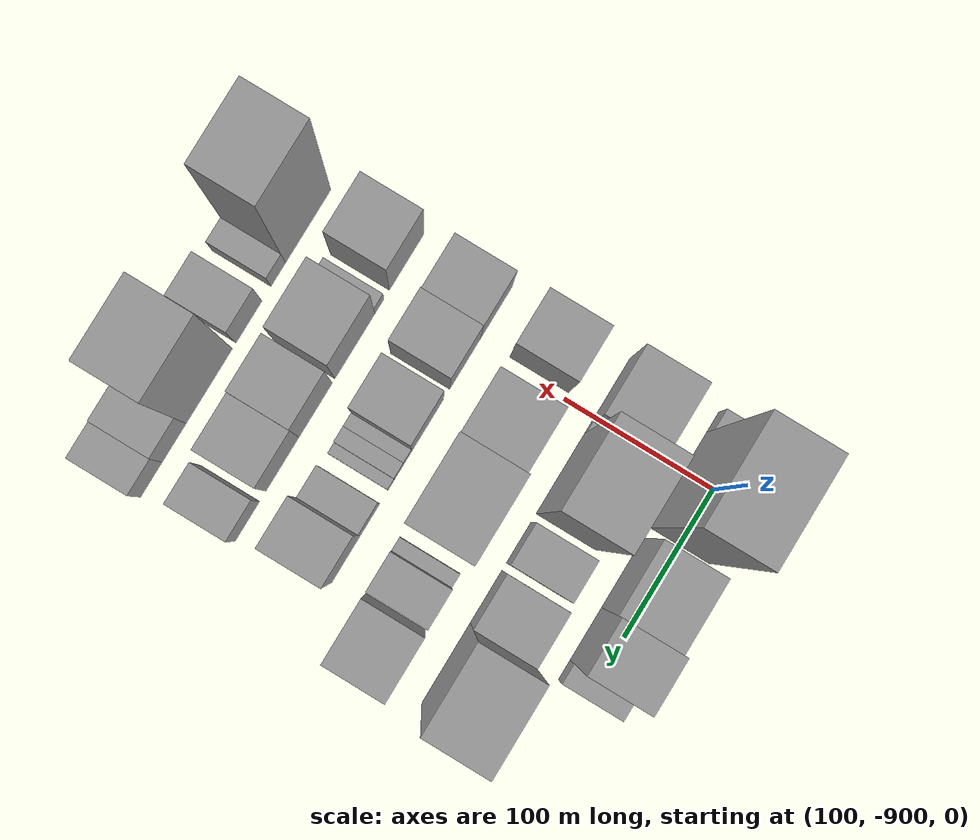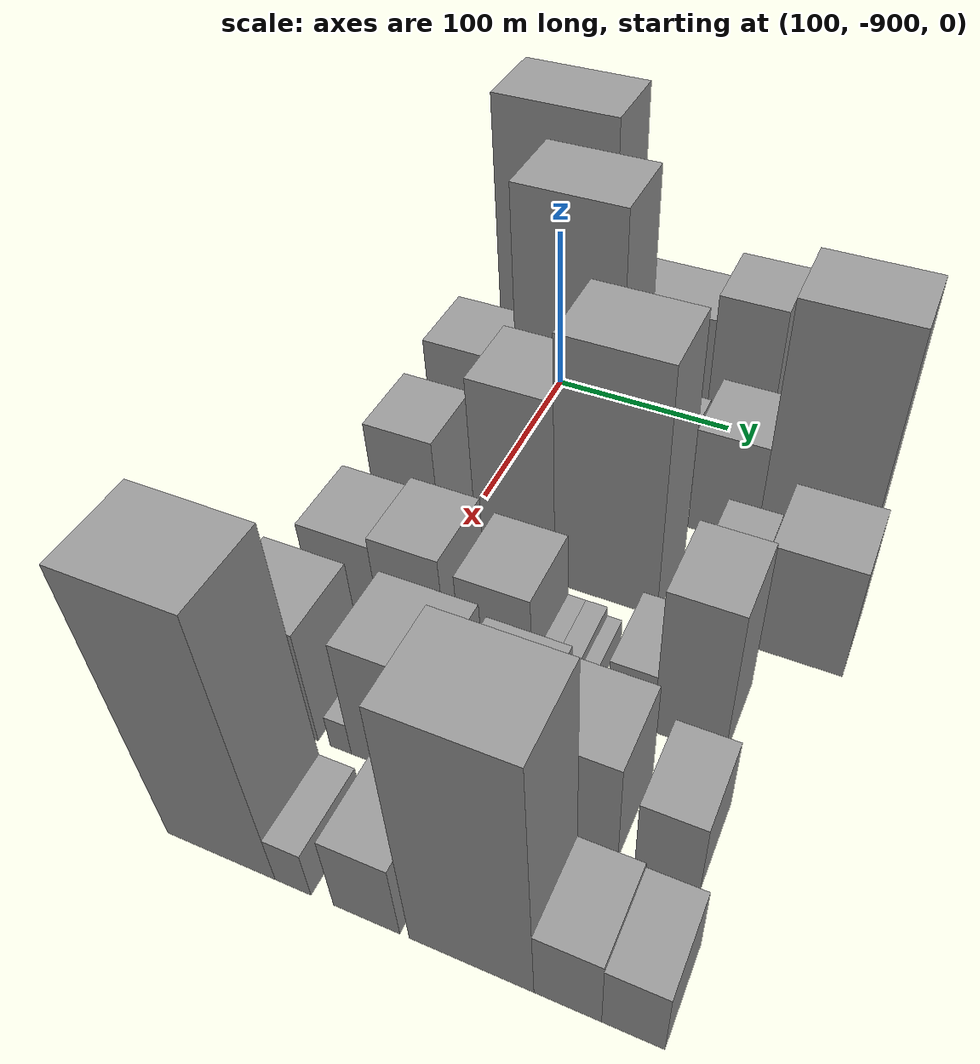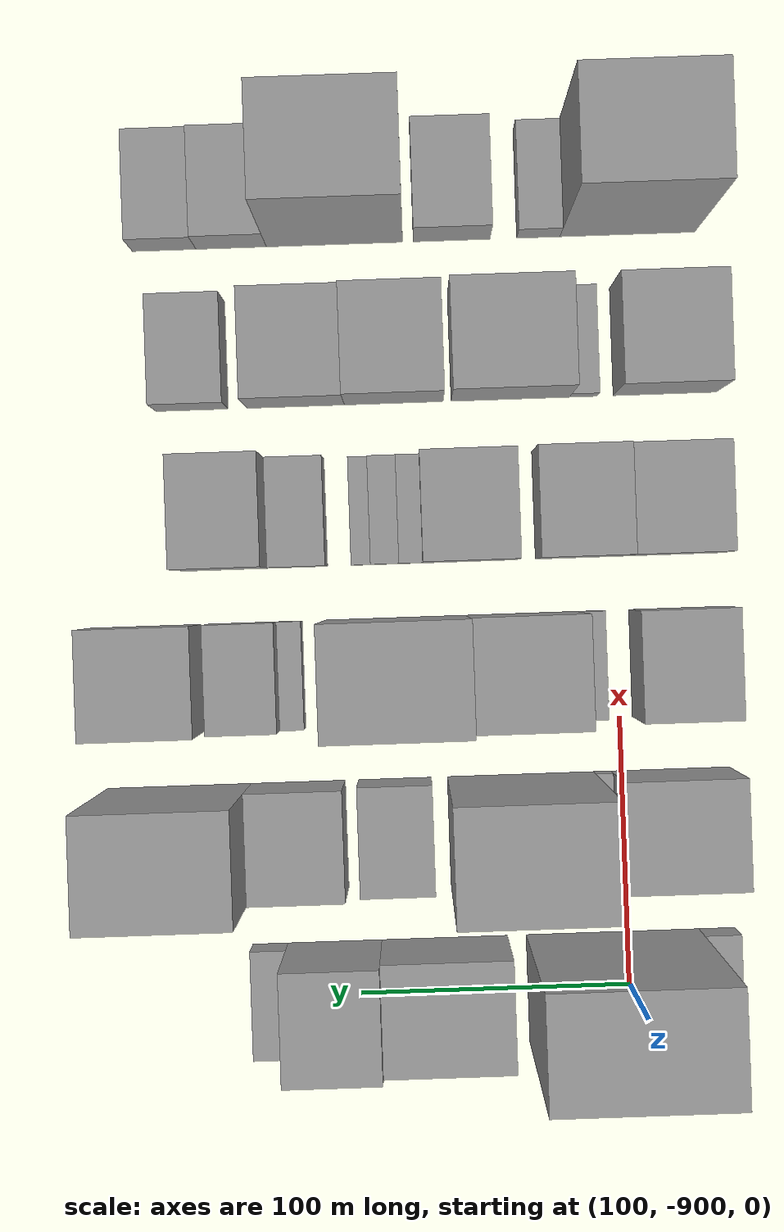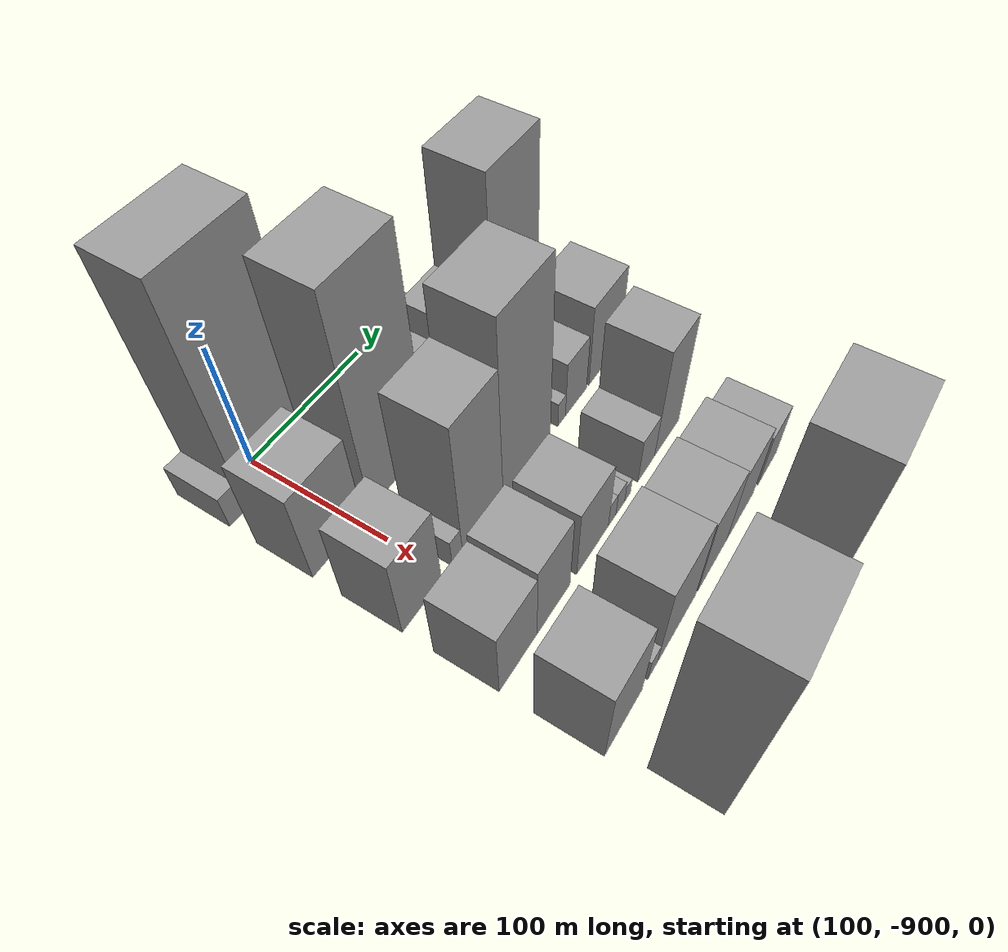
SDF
<sdf version="1.6">
 <world name="default">
  <model name="building_1">
   <static>1</static>
   <pose>100.0000 -933.2651 0 0.000000 0.000000 0.000000</pose>
   <link name="link">
    <pose>0 0 13.50 0 0 0</pose>
    <collision name="collision"><geometry><box><size>40.0000 13.4698 27.0000</size></box></geometry></collision>
    <visual name="visual">
     <cast_shadows>0</cast_shadows>
     <geometry><box><size>40.0000 13.4698 27.0000</size></box></geometry>
     <material>
      <script>
       <uri>model://grey_wall/materials/scripts</uri>
       <uri>model://grey_wall/materials/textures</uri>
       <name>vrc/grey_wall</name>
      </script>
     </material>
    </visual>
   </link>
  </model>
  <model name="building_2">
   <static>1</static>
   <pose>100.0000 -894.2700 0 0.000000 0.000000 0.000000</pose>
   <link name="link">
    <pose>0 0 90.00 0 0 0</pose>
    <collision name="collision"><geometry><box><size>40.0000 64.5203 180.0000</size></box></geometry></collision>
    <visual name="visual">
     <cast_shadows>0</cast_shadows>
     <geometry><box><size>40.0000 64.5203 180.0000</size></box></geometry>
     <material>
      <script>
       <uri>model://grey_wall/materials/scripts</uri>
       <uri>model://grey_wall/materials/textures</uri>
       <name>vrc/grey_wall</name>
      </script>
     </material>
    </visual>
   </link>
  </model>
  <model name="building_3">
   <static>1</static>
   <pose>100.0000 -831.5772 0 0.000000 0.000000 0.000000</pose>
   <link name="link">
    <pose>0 0 42.00 0 0 0</pose>
    <collision name="collision"><geometry><box><size>40.0000 46.8655 84.0000</size></box></geometry></collision>
    <visual name="visual">
     <cast_shadows>0</cast_shadows>
     <geometry><box><size>40.0000 46.8655 84.0000</size></box></geometry>
     <material>
      <script>
       <uri>model://grey_wall/materials/scripts</uri>
       <uri>model://grey_wall/materials/textures</uri>
       <name>vrc/grey_wall</name>
      </script>
     </material>
    </visual>
   </link>
  </model>
  <model name="building_4">
   <static>1</static>
   <pose>100.0000 -790.6381 0 0.000000 0.000000 0.000000</pose>
   <link name="link">
    <pose>0 0 49.50 0 0 0</pose>
    <collision name="collision"><geometry><box><size>40.0000 35.0127 99.0000</size></box></geometry></collision>
    <visual name="visual">
     <cast_shadows>0</cast_shadows>
     <geometry><box><size>40.0000 35.0127 99.0000</size></box></geometry>
     <material>
      <script>
       <uri>model://grey_wall/materials/scripts</uri>
       <uri>model://grey_wall/materials/textures</uri>
       <name>vrc/grey_wall</name>
      </script>
     </material>
    </visual>
   </link>
  </model>
  <model name="building_5">
   <static>1</static>
   <pose>100.0000 -766.5881 0 0.000000 0.000000 0.000000</pose>
   <link name="link">
    <pose>0 0 13.50 0 0 0</pose>
    <collision name="collision"><geometry><box><size>40.0000 13.0871 27.0000</size></box></geometry></collision>
    <visual name="visual">
     <cast_shadows>0</cast_shadows>
     <geometry><box><size>40.0000 13.0871 27.0000</size></box></geometry>
     <material>
      <script>
       <uri>model://grey_wall/materials/scripts</uri>
       <uri>model://grey_wall/materials/textures</uri>
       <name>vrc/grey_wall</name>
      </script>
     </material>
    </visual>
   </link>
  </model>
  <model name="building_46">
   <static>1</static>
   <pose>160.0000 -917.8969 0 0.000000 0.000000 0.000000</pose>
   <link name="link">
    <pose>0 0 37.50 0 0 0</pose>
    <collision name="collision"><geometry><box><size>40.0000 44.2061 75.0000</size></box></geometry></collision>
    <visual name="visual">
     <cast_shadows>0</cast_shadows>
     <geometry><box><size>40.0000 44.2061 75.0000</size></box></geometry>
     <material>
      <script>
       <uri>model://grey_wall/materials/scripts</uri>
       <uri>model://grey_wall/materials/textures</uri>
       <name>vrc/grey_wall</name>
      </script>
     </material>
    </visual>
   </link>
  </model>
  <model name="building_47">
   <static>1</static>
   <pose>160.0000 -892.5548 0 0.000000 0.000000 0.000000</pose>
   <link name="link">
    <pose>0 0 7.50 0 0 0</pose>
    <collision name="collision"><geometry><box><size>40.0000 6.4782 15.0000</size></box></geometry></collision>
    <visual name="visual">
     <cast_shadows>0</cast_shadows>
     <geometry><box><size>40.0000 6.4782 15.0000</size></box></geometry>
     <material>
      <script>
       <uri>model://grey_wall/materials/scripts</uri>
       <uri>model://grey_wall/materials/textures</uri>
       <name>vrc/grey_wall</name>
      </script>
     </material>
    </visual>
   </link>
  </model>
  <model name="building_48">
   <static>1</static>
   <pose>160.0000 -861.9992 0 0.000000 0.000000 0.000000</pose>
   <link name="link">
    <pose>0 0 87.00 0 0 0</pose>
    <collision name="collision"><geometry><box><size>40.0000 54.6330 174.0000</size></box></geometry></collision>
    <visual name="visual">
     <cast_shadows>0</cast_shadows>
     <geometry><box><size>40.0000 54.6330 174.0000</size></box></geometry>
     <material>
      <script>
       <uri>model://grey_wall/materials/scripts</uri>
       <uri>model://grey_wall/materials/textures</uri>
       <name>vrc/grey_wall</name>
      </script>
     </material>
    </visual>
   </link>
  </model>
  <model name="building_49">
   <static>1</static>
   <pose>160.0000 -815.1292 0 0.000000 0.000000 0.000000</pose>
   <link name="link">
    <pose>0 0 25.50 0 0 0</pose>
    <collision name="collision"><geometry><box><size>40.0000 27.1071 51.0000</size></box></geometry></collision>
    <visual name="visual">
     <cast_shadows>0</cast_shadows>
     <geometry><box><size>40.0000 27.1071 51.0000</size></box></geometry>
     <material>
      <script>
       <uri>model://grey_wall/materials/scripts</uri>
       <uri>model://grey_wall/materials/textures</uri>
       <name>vrc/grey_wall</name>
      </script>
     </material>
    </visual>
   </link>
  </model>
  <model name="building_50">
   <static>1</static>
   <pose>160.0000 -779.0476 0 0.000000 0.000000 0.000000</pose>
   <link name="link">
    <pose>0 0 33.00 0 0 0</pose>
    <collision name="collision"><geometry><box><size>40.0000 35.0561 66.0000</size></box></geometry></collision>
    <visual name="visual">
     <cast_shadows>0</cast_shadows>
     <geometry><box><size>40.0000 35.0561 66.0000</size></box></geometry>
     <material>
      <script>
       <uri>model://grey_wall/materials/scripts</uri>
       <uri>model://grey_wall/materials/textures</uri>
       <name>vrc/grey_wall</name>
      </script>
     </material>
    </visual>
   </link>
  </model>
  <model name="building_51">
   <static>1</static>
   <pose>160.0000 -734.7653 0 0.000000 0.000000 0.000000</pose>
   <link name="link">
    <pose>0 0 75.00 0 0 0</pose>
    <collision name="collision"><geometry><box><size>40.0000 53.5085 150.0000</size></box></geometry></collision>
    <visual name="visual">
     <cast_shadows>0</cast_shadows>
     <geometry><box><size>40.0000 53.5085 150.0000</size></box></geometry>
     <material>
      <script>
       <uri>model://grey_wall/materials/scripts</uri>
       <uri>model://grey_wall/materials/textures</uri>
       <name>vrc/grey_wall</name>
      </script>
     </material>
    </visual>
   </link>
  </model>
  <model name="building_93">
   <static>1</static>
   <pose>220.0000 -922.2115 0 0.000000 0.000000 0.000000</pose>
   <link name="link">
    <pose>0 0 34.50 0 0 0</pose>
    <collision name="collision"><geometry><box><size>40.0000 35.5771 69.0000</size></box></geometry></collision>
    <visual name="visual">
     <cast_shadows>0</cast_shadows>
     <geometry><box><size>40.0000 35.5771 69.0000</size></box></geometry>
     <material>
      <script>
       <uri>model://grey_wall/materials/scripts</uri>
       <uri>model://grey_wall/materials/textures</uri>
       <name>vrc/grey_wall</name>
      </script>
     </material>
    </visual>
   </link>
  </model>
  <model name="building_94">
   <static>1</static>
   <pose>220.0000 -889.5481 0 0.000000 0.000000 0.000000</pose>
   <link name="link">
    <pose>0 0 12.00 0 0 0</pose>
    <collision name="collision"><geometry><box><size>40.0000 9.7497 24.0000</size></box></geometry></collision>
    <visual name="visual">
     <cast_shadows>0</cast_shadows>
     <geometry><box><size>40.0000 9.7497 24.0000</size></box></geometry>
     <material>
      <script>
       <uri>model://grey_wall/materials/scripts</uri>
       <uri>model://grey_wall/materials/textures</uri>
       <name>vrc/grey_wall</name>
      </script>
     </material>
    </visual>
   </link>
  </model>
  <model name="building_95">
   <static>1</static>
   <pose>220.0000 -864.0778 0 0.000000 0.000000 0.000000</pose>
   <link name="link">
    <pose>0 0 57.00 0 0 0</pose>
    <collision name="collision"><geometry><box><size>40.0000 41.1908 114.0000</size></box></geometry></collision>
    <visual name="visual">
     <cast_shadows>0</cast_shadows>
     <geometry><box><size>40.0000 41.1908 114.0000</size></box></geometry>
     <material>
      <script>
       <uri>model://grey_wall/materials/scripts</uri>
       <uri>model://grey_wall/materials/textures</uri>
       <name>vrc/grey_wall</name>
      </script>
     </material>
    </visual>
   </link>
  </model>
  <model name="building_96">
   <static>1</static>
   <pose>220.0000 -817.5192 0 0.000000 0.000000 0.000000</pose>
   <link name="link">
    <pose>0 0 75.00 0 0 0</pose>
    <collision name="collision"><geometry><box><size>40.0000 51.9264 150.0000</size></box></geometry></collision>
    <visual name="visual">
     <cast_shadows>0</cast_shadows>
     <geometry><box><size>40.0000 51.9264 150.0000</size></box></geometry>
     <material>
      <script>
       <uri>model://grey_wall/materials/scripts</uri>
       <uri>model://grey_wall/materials/textures</uri>
       <name>vrc/grey_wall</name>
      </script>
     </material>
    </visual>
   </link>
  </model>
  <model name="building_97">
   <static>1</static>
   <pose>220.0000 -778.0664 0 0.000000 0.000000 0.000000</pose>
   <link name="link">
    <pose>0 0 10.50 0 0 0</pose>
    <collision name="collision"><geometry><box><size>40.0000 8.9793 21.0000</size></box></geometry></collision>
    <visual name="visual">
     <cast_shadows>0</cast_shadows>
     <geometry><box><size>40.0000 8.9793 21.0000</size></box></geometry>
     <material>
      <script>
       <uri>model://grey_wall/materials/scripts</uri>
       <uri>model://grey_wall/materials/textures</uri>
       <name>vrc/grey_wall</name>
      </script>
     </material>
    </visual>
   </link>
  </model>
  <model name="building_98">
   <static>1</static>
   <pose>220.0000 -760.6428 0 0.000000 0.000000 0.000000</pose>
   <link name="link">
    <pose>0 0 24.00 0 0 0</pose>
    <collision name="collision"><geometry><box><size>40.0000 25.8678 48.0000</size></box></geometry></collision>
    <visual name="visual">
     <cast_shadows>0</cast_shadows>
     <geometry><box><size>40.0000 25.8678 48.0000</size></box></geometry>
     <material>
      <script>
       <uri>model://grey_wall/materials/scripts</uri>
       <uri>model://grey_wall/materials/textures</uri>
       <name>vrc/grey_wall</name>
      </script>
     </material>
    </visual>
   </link>
  </model>
  <model name="building_99">
   <static>1</static>
   <pose>220.0000 -724.1850 0 0.000000 0.000000 0.000000</pose>
   <link name="link">
    <pose>0 0 34.50 0 0 0</pose>
    <collision name="collision"><geometry><box><size>40.0000 41.0480 69.0000</size></box></geometry></collision>
    <visual name="visual">
     <cast_shadows>0</cast_shadows>
     <geometry><box><size>40.0000 41.0480 69.0000</size></box></geometry>
     <material>
      <script>
       <uri>model://grey_wall/materials/scripts</uri>
       <uri>model://grey_wall/materials/textures</uri>
       <name>vrc/grey_wall</name>
      </script>
     </material>
    </visual>
   </link>
  </model>
  <model name="building_145">
   <static>1</static>
   <pose>280.0000 -922.0316 0 0.000000 0.000000 0.000000</pose>
   <link name="link">
    <pose>0 0 30.00 0 0 0</pose>
    <collision name="collision"><geometry><box><size>40.0000 35.9369 60.0000</size></box></geometry></collision>
    <visual name="visual">
     <cast_shadows>0</cast_shadows>
     <geometry><box><size>40.0000 35.9369 60.0000</size></box></geometry>
     <material>
      <script>
       <uri>model://grey_wall/materials/scripts</uri>
       <uri>model://grey_wall/materials/textures</uri>
       <name>vrc/grey_wall</name>
      </script>
     </material>
    </visual>
   </link>
  </model>
  <model name="building_146">
   <static>1</static>
   <pose>280.0000 -887.1645 0 0.000000 0.000000 0.000000</pose>
   <link name="link">
    <pose>0 0 33.00 0 0 0</pose>
    <collision name="collision"><geometry><box><size>40.0000 33.7974 66.0000</size></box></geometry></collision>
    <visual name="visual">
     <cast_shadows>0</cast_shadows>
     <geometry><box><size>40.0000 33.7974 66.0000</size></box></geometry>
     <material>
      <script>
       <uri>model://grey_wall/materials/scripts</uri>
       <uri>model://grey_wall/materials/textures</uri>
       <name>vrc/grey_wall</name>
      </script>
     </material>
    </visual>
   </link>
  </model>
  <model name="building_147">
   <static>1</static>
   <pose>280.0000 -845.7232 0 0.000000 0.000000 0.000000</pose>
   <link name="link">
    <pose>0 0 30.00 0 0 0</pose>
    <collision name="collision"><geometry><box><size>40.0000 35.0851 60.0000</size></box></geometry></collision>
    <visual name="visual">
     <cast_shadows>0</cast_shadows>
     <geometry><box><size>40.0000 35.0851 60.0000</size></box></geometry>
     <material>
      <script>
       <uri>model://grey_wall/materials/scripts</uri>
       <uri>model://grey_wall/materials/textures</uri>
       <name>vrc/grey_wall</name>
      </script>
     </material>
    </visual>
   </link>
  </model>
  <model name="building_148">
   <static>1</static>
   <pose>280.0000 -823.7832 0 0.000000 0.000000 0.000000</pose>
   <link name="link">
    <pose>0 0 10.50 0 0 0</pose>
    <collision name="collision"><geometry><box><size>40.0000 8.7948 21.0000</size></box></geometry></collision>
    <visual name="visual">
     <cast_shadows>0</cast_shadows>
     <geometry><box><size>40.0000 8.7948 21.0000</size></box></geometry>
     <material>
      <script>
       <uri>model://grey_wall/materials/scripts</uri>
       <uri>model://grey_wall/materials/textures</uri>
       <name>vrc/grey_wall</name>
      </script>
     </material>
    </visual>
   </link>
  </model>
  <model name="building_149">
   <static>1</static>
   <pose>280.0000 -814.1563 0 0.000000 0.000000 0.000000</pose>
   <link name="link">
    <pose>0 0 10.50 0 0 0</pose>
    <collision name="collision"><geometry><box><size>40.0000 10.4590 21.0000</size></box></geometry></collision>
    <visual name="visual">
     <cast_shadows>0</cast_shadows>
     <geometry><box><size>40.0000 10.4590 21.0000</size></box></geometry>
     <material>
      <script>
       <uri>model://grey_wall/materials/scripts</uri>
       <uri>model://grey_wall/materials/textures</uri>
       <name>vrc/grey_wall</name>
      </script>
     </material>
    </visual>
   </link>
  </model>
  <model name="building_150">
   <static>1</static>
   <pose>280.0000 -805.3285 0 0.000000 0.000000 0.000000</pose>
   <link name="link">
    <pose>0 0 7.50 0 0 0</pose>
    <collision name="collision"><geometry><box><size>40.0000 7.1966 15.0000</size></box></geometry></collision>
    <visual name="visual">
     <cast_shadows>0</cast_shadows>
     <geometry><box><size>40.0000 7.1966 15.0000</size></box></geometry>
     <material>
      <script>
       <uri>model://grey_wall/materials/scripts</uri>
       <uri>model://grey_wall/materials/textures</uri>
       <name>vrc/grey_wall</name>
      </script>
     </material>
    </visual>
   </link>
  </model>
  <model name="building_151">
   <static>1</static>
   <pose>280.0000 -782.2149 0 0.000000 0.000000 0.000000</pose>
   <link name="link">
    <pose>0 0 19.50 0 0 0</pose>
    <collision name="collision"><geometry><box><size>40.0000 21.0306 39.0000</size></box></geometry></collision>
    <visual name="visual">
     <cast_shadows>0</cast_shadows>
     <geometry><box><size>40.0000 21.0306 39.0000</size></box></geometry>
     <material>
      <script>
       <uri>model://grey_wall/materials/scripts</uri>
       <uri>model://grey_wall/materials/textures</uri>
       <name>vrc/grey_wall</name>
      </script>
     </material>
    </visual>
   </link>
  </model>
  <model name="building_152">
   <static>1</static>
   <pose>280.0000 -755.6947 0 0.000000 0.000000 0.000000</pose>
   <link name="link">
    <pose>0 0 46.50 0 0 0</pose>
    <collision name="collision"><geometry><box><size>40.0000 32.0099 93.0000</size></box></geometry></collision>
    <visual name="visual">
     <cast_shadows>0</cast_shadows>
     <geometry><box><size>40.0000 32.0099 93.0000</size></box></geometry>
     <material>
      <script>
       <uri>model://grey_wall/materials/scripts</uri>
       <uri>model://grey_wall/materials/textures</uri>
       <name>vrc/grey_wall</name>
      </script>
     </material>
    </visual>
   </link>
  </model>
  <model name="building_206">
   <static>1</static>
   <pose>340.0000 -920.7034 0 0.000000 0.000000 0.000000</pose>
   <link name="link">
    <pose>0 0 36.00 0 0 0</pose>
    <collision name="collision"><geometry><box><size>40.0000 38.5933 72.0000</size></box></geometry></collision>
    <visual name="visual">
     <cast_shadows>0</cast_shadows>
     <geometry><box><size>40.0000 38.5933 72.0000</size></box></geometry>
     <material>
      <script>
       <uri>model://grey_wall/materials/scripts</uri>
       <uri>model://grey_wall/materials/textures</uri>
       <name>vrc/grey_wall</name>
      </script>
     </material>
    </visual>
   </link>
  </model>
  <model name="building_207">
   <static>1</static>
   <pose>340.0000 -890.2643 0 0.000000 0.000000 0.000000</pose>
   <link name="link">
    <pose>0 0 10.50 0 0 0</pose>
    <collision name="collision"><geometry><box><size>40.0000 10.2849 21.0000</size></box></geometry></collision>
    <visual name="visual">
     <cast_shadows>0</cast_shadows>
     <geometry><box><size>40.0000 10.2849 21.0000</size></box></geometry>
     <material>
      <script>
       <uri>model://grey_wall/materials/scripts</uri>
       <uri>model://grey_wall/materials/textures</uri>
       <name>vrc/grey_wall</name>
      </script>
     </material>
    </visual>
   </link>
  </model>
  <model name="building_208">
   <static>1</static>
   <pose>340.0000 -862.9969 0 0.000000 0.000000 0.000000</pose>
   <link name="link">
    <pose>0 0 37.50 0 0 0</pose>
    <collision name="collision"><geometry><box><size>40.0000 44.2498 75.0000</size></box></geometry></collision>
    <visual name="visual">
     <cast_shadows>0</cast_shadows>
     <geometry><box><size>40.0000 44.2498 75.0000</size></box></geometry>
     <material>
      <script>
       <uri>model://grey_wall/materials/scripts</uri>
       <uri>model://grey_wall/materials/textures</uri>
       <name>vrc/grey_wall</name>
      </script>
     </material>
    </visual>
   </link>
  </model>
  <model name="building_209">
   <static>1</static>
   <pose>340.0000 -819.4858 0 0.000000 0.000000 0.000000</pose>
   <link name="link">
    <pose>0 0 34.50 0 0 0</pose>
    <collision name="collision"><geometry><box><size>40.0000 36.7725 69.0000</size></box></geometry></collision>
    <visual name="visual">
     <cast_shadows>0</cast_shadows>
     <geometry><box><size>40.0000 36.7725 69.0000</size></box></geometry>
     <material>
      <script>
       <uri>model://grey_wall/materials/scripts</uri>
       <uri>model://grey_wall/materials/textures</uri>
       <name>vrc/grey_wall</name>
      </script>
     </material>
    </visual>
   </link>
  </model>
  <model name="building_210">
   <static>1</static>
   <pose>340.0000 -782.9103 0 0.000000 0.000000 0.000000</pose>
   <link name="link">
    <pose>0 0 31.50 0 0 0</pose>
    <collision name="collision"><geometry><box><size>40.0000 36.3784 63.0000</size></box></geometry></collision>
    <visual name="visual">
     <cast_shadows>0</cast_shadows>
     <geometry><box><size>40.0000 36.3784 63.0000</size></box></geometry>
     <material>
      <script>
       <uri>model://grey_wall/materials/scripts</uri>
       <uri>model://grey_wall/materials/textures</uri>
       <name>vrc/grey_wall</name>
      </script>
     </material>
    </visual>
   </link>
  </model>
  <model name="building_211">
   <static>1</static>
   <pose>340.0000 -744.2791 0 0.000000 0.000000 0.000000</pose>
   <link name="link">
    <pose>0 0 22.50 0 0 0</pose>
    <collision name="collision"><geometry><box><size>40.0000 26.8839 45.0000</size></box></geometry></collision>
    <visual name="visual">
     <cast_shadows>0</cast_shadows>
     <geometry><box><size>40.0000 26.8839 45.0000</size></box></geometry>
     <material>
      <script>
       <uri>model://grey_wall/materials/scripts</uri>
       <uri>model://grey_wall/materials/textures</uri>
       <name>vrc/grey_wall</name>
      </script>
     </material>
    </visual>
   </link>
  </model>
  <model name="building_257">
   <static>1</static>
   <pose>400.0000 -908.8026 0 0.000000 0.000000 0.000000</pose>
   <link name="link">
    <pose>0 0 81.00 0 0 0</pose>
    <collision name="collision"><geometry><box><size>40.0000 50.3948 162.0000</size></box></geometry></collision>
    <visual name="visual">
     <cast_shadows>0</cast_shadows>
     <geometry><box><size>40.0000 50.3948 162.0000</size></box></geometry>
     <material>
      <script>
       <uri>model://grey_wall/materials/scripts</uri>
       <uri>model://grey_wall/materials/textures</uri>
       <name>vrc/grey_wall</name>
      </script>
     </material>
    </visual>
   </link>
  </model>
  <model name="building_258">
   <static>1</static>
   <pose>400.0000 -875.5279 0 0.000000 0.000000 0.000000</pose>
   <link name="link">
    <pose>0 0 15.00 0 0 0</pose>
    <collision name="collision"><geometry><box><size>40.0000 16.1546 30.0000</size></box></geometry></collision>
    <visual name="visual">
     <cast_shadows>0</cast_shadows>
     <geometry><box><size>40.0000 16.1546 30.0000</size></box></geometry>
     <material>
      <script>
       <uri>model://grey_wall/materials/scripts</uri>
       <uri>model://grey_wall/materials/textures</uri>
       <name>vrc/grey_wall</name>
      </script>
     </material>
    </visual>
   </link>
  </model>
  <model name="building_259">
   <static>1</static>
   <pose>400.0000 -843.1466 0 0.000000 0.000000 0.000000</pose>
   <link name="link">
    <pose>0 0 24.00 0 0 0</pose>
    <collision name="collision"><geometry><box><size>40.0000 28.6080 48.0000</size></box></geometry></collision>
    <visual name="visual">
     <cast_shadows>0</cast_shadows>
     <geometry><box><size>40.0000 28.6080 48.0000</size></box></geometry>
     <material>
      <script>
       <uri>model://grey_wall/materials/scripts</uri>
       <uri>model://grey_wall/materials/textures</uri>
       <name>vrc/grey_wall</name>
      </script>
     </material>
    </visual>
   </link>
  </model>
  <model name="building_260">
   <static>1</static>
   <pose>400.0000 -799.4134 0 0.000000 0.000000 0.000000</pose>
   <link name="link">
    <pose>0 0 75.00 0 0 0</pose>
    <collision name="collision"><geometry><box><size>40.0000 50.8583 150.0000</size></box></geometry></collision>
    <visual name="visual">
     <cast_shadows>0</cast_shadows>
     <geometry><box><size>40.0000 50.8583 150.0000</size></box></geometry>
     <material>
      <script>
       <uri>model://grey_wall/materials/scripts</uri>
       <uri>model://grey_wall/materials/textures</uri>
       <name>vrc/grey_wall</name>
      </script>
     </material>
    </visual>
   </link>
  </model>
  <model name="building_261">
   <static>1</static>
   <pose>400.0000 -760.8719 0 0.000000 0.000000 0.000000</pose>
   <link name="link">
    <pose>0 0 22.50 0 0 0</pose>
    <collision name="collision"><geometry><box><size>40.0000 26.2246 45.0000</size></box></geometry></collision>
    <visual name="visual">
     <cast_shadows>0</cast_shadows>
     <geometry><box><size>40.0000 26.2246 45.0000</size></box></geometry>
     <material>
      <script>
       <uri>model://grey_wall/materials/scripts</uri>
       <uri>model://grey_wall/materials/textures</uri>
       <name>vrc/grey_wall</name>
      </script>
     </material>
    </visual>
   </link>
  </model>
  <model name="building_262">
   <static>1</static>
   <pose>400.0000 -735.8819 0 0.000000 0.000000 0.000000</pose>
   <link name="link">
    <pose>0 0 21.00 0 0 0</pose>
    <collision name="collision"><geometry><box><size>40.0000 23.7555 42.0000</size></box></geometry></collision>
    <visual name="visual">
     <cast_shadows>0</cast_shadows>
     <geometry><box><size>40.0000 23.7555 42.0000</size></box></geometry>
     <material>
      <script>
       <uri>model://grey_wall/materials/scripts</uri>
       <uri>model://grey_wall/materials/textures</uri>
       <name>vrc/grey_wall</name>
      </script>
     </material>
    </visual>
   </link>
  </model>
 </world>
</sdf>
